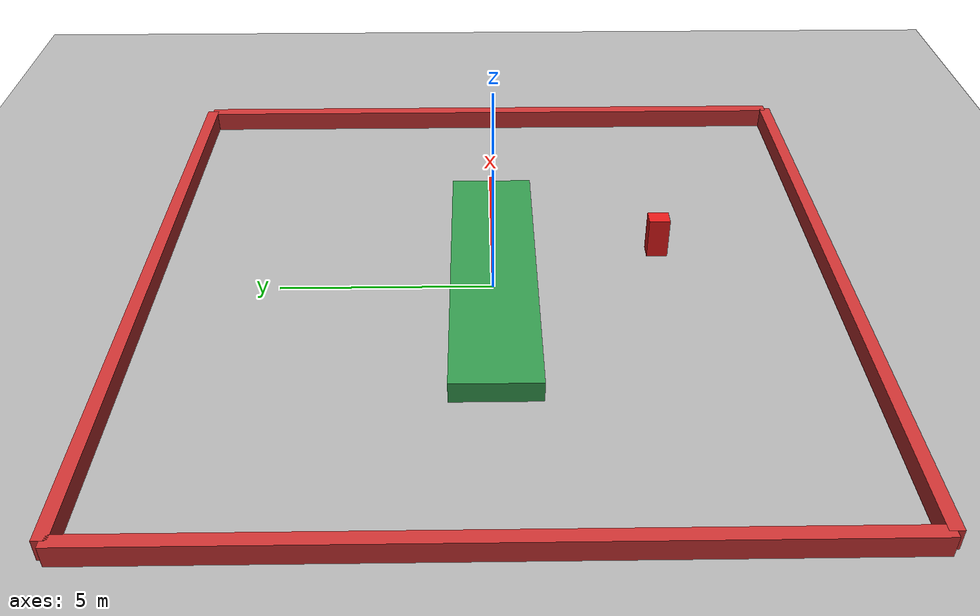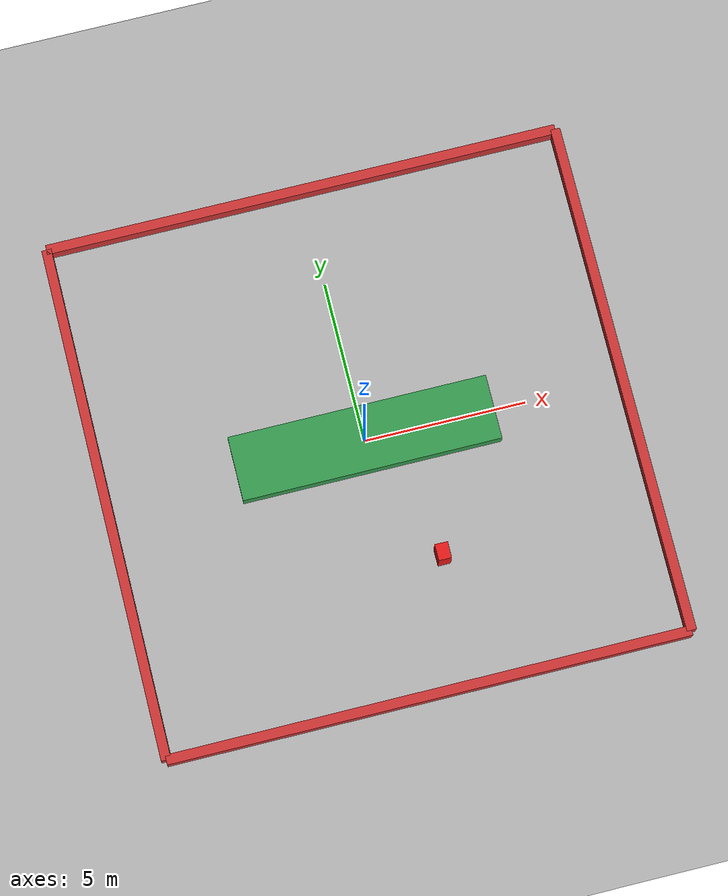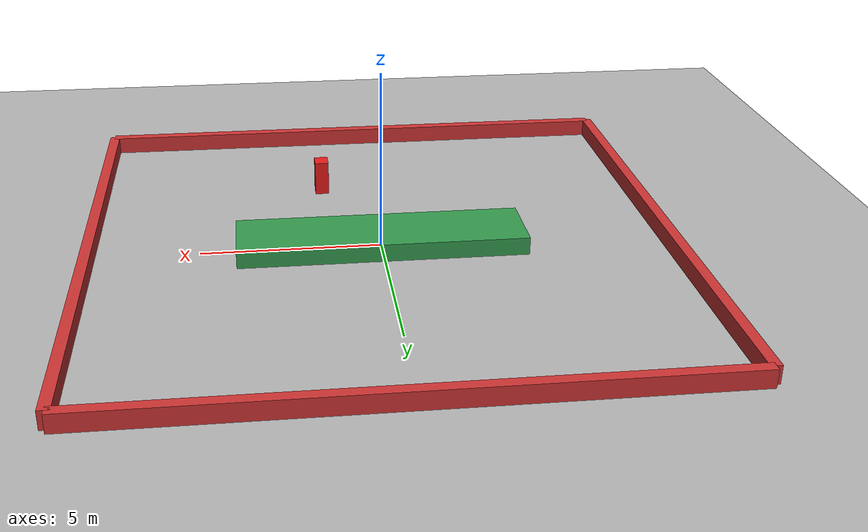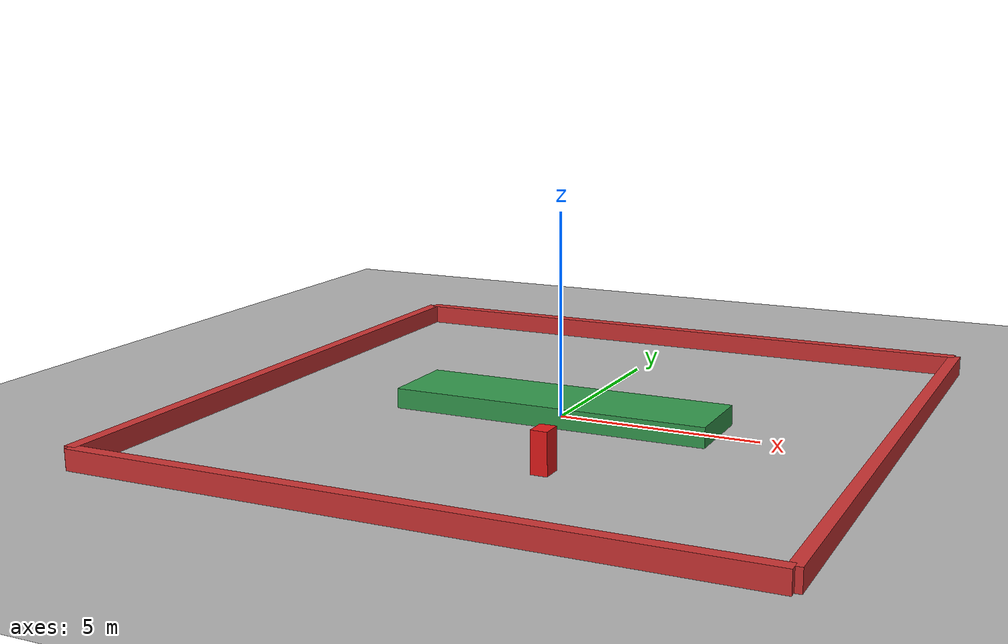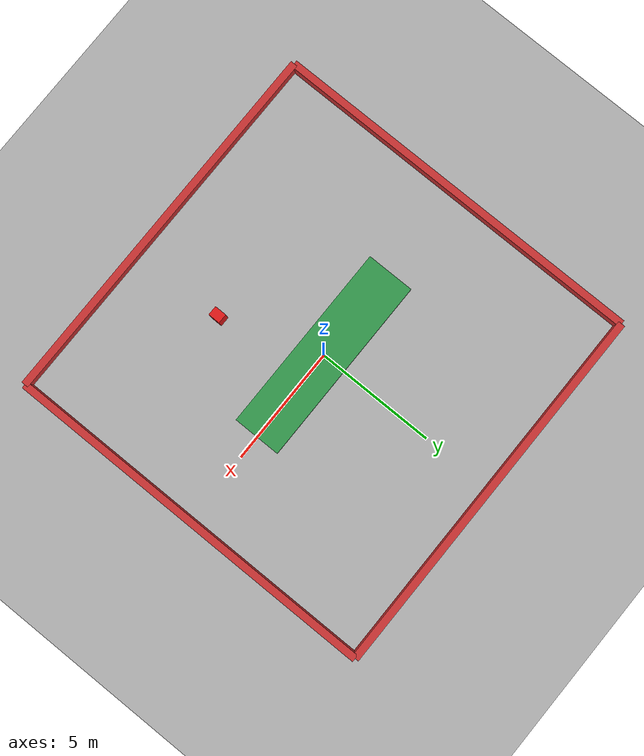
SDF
<?xml version="1.0" ?>
<sdf version="1.8">
  <world name="car_track_world">

    <!-- 1. 물리 엔진(Physics) 파라미터 설정         -->
    <!--
      - max_step_size: 고정 타임스텝 (0.001초 = 1ms)
      - real_time_factor: 목표 실시간 배율 (1.0 = 현실 시간과 동일)
    -->
    <physics name="1ms" type="ode">
      <max_step_size>0.001</max_step_size>
      <real_time_factor>1.0</real_time_factor>
    </physics>

    <!-- 2. Gazebo 필수 시스템 플러그인 로드        -->
    <!-- 물리 연산 시스템 -->
    <plugin
      filename="gz-sim-physics-system"
      name="gz::sim::systems::Physics">
    </plugin>

    <!-- 사용자 GUI 명령 및 모델 스폰 처리 시스템 -->
    <plugin
      filename="gz-sim-user-commands-system"
      name="gz::sim::systems::UserCommands">
    </plugin>

    <!-- 3D 렌더링 씬 정보를 GUI 및 센서로 브로드캐스팅하는 시스템 -->
    <plugin
      filename="gz-sim-scene-broadcaster-system"
      name="gz::sim::systems::SceneBroadcaster">
    </plugin>

    <plugin
      filename="gz-sim-sensors-system"
      name="gz::sim::systems::Sensors">
      <render_engine>ogre2</render_engine>
    </plugin>

    <plugin
      filename="gz-sim-imu-system"
      name="gz::sim::systems::Imu">
    </plugin>

    <!-- 3. 환경 조명 (Directional Sun)             -->
    <light type="directional" name="sun">
      <cast_shadows>true</cast_shadows>
      <pose>0 0 15 0 0 0</pose>
      <diffuse>0.85 0.85 0.85 1</diffuse>
      <specular>0.2 0.2 0.2 1</specular>
      <attenuation>
        <range>1000</range>
        <constant>0.9</constant>
        <linear>0.01</linear>
        <quadratic>0.001</quadratic>
      </attenuation>
      <direction>-0.5 0.1 -0.9</direction>
    </light>

    <!-- 4. 무한 지면 평면 (Ground Plane)           -->
    <model name="ground_plane">
      <static>true</static>
      <link name="link">
        <collision name="collision">
          <geometry>
            <plane>
              <normal>0 0 1</normal>
              <size>100 100</size>
            </plane>
          </geometry>
          <surface>
            <friction>
              <ode>
                <!-- 지면 마찰계수: 미끄러짐 방지를 위해 1.0으로 설정 -->
                <mu>1.0</mu>
                <mu2>1.0</mu2>
              </ode>
            </friction>
          </surface>
        </collision>
        <visual name="visual">
          <geometry>
            <plane>
              <normal>0 0 1</normal>
              <size>100 100</size>
            </plane>
          </geometry>
          <material>
            <ambient>0.7 0.7 0.7 1</ambient>
            <diffuse>0.7 0.7 0.7 1</diffuse>
            <specular>0.2 0.2 0.2 1</specular>
          </material>
        </visual>
      </link>
    </model>

    <!-- 5. 트랙 외곽 안전벽 및 주행 가이드 장애물  -->
    <!-- 북쪽 외곽벽 (길이 16m, 높이 0.5m) -->
    <model name="wall_north">
      <static>true</static>
      <pose>0 8 0.25 0 0 0</pose>
      <link name="link">
        <collision name="collision">
          <geometry>
            <box><size>16 0.3 0.5</size></box>
          </geometry>
        </collision>
        <visual name="visual">
          <geometry>
            <box><size>16 0.3 0.5</size></box>
          </geometry>
          <material>
            <ambient>0.8 0.2 0.2 1</ambient>
            <diffuse>0.8 0.2 0.2 1</diffuse>
          </material>
        </visual>
      </link>
    </model>

    <!-- 남쪽 외곽벽 (길이 16m, 높이 0.5m) -->
    <model name="wall_south">
      <static>true</static>
      <pose>0 -8 0.25 0 0 0</pose>
      <link name="link">
        <collision name="collision">
          <geometry>
            <box><size>16 0.3 0.5</size></box>
          </geometry>
        </collision>
        <visual name="visual">
          <geometry>
            <box><size>16 0.3 0.5</size></box>
          </geometry>
          <material>
            <ambient>0.8 0.2 0.2 1</ambient>
            <diffuse>0.8 0.2 0.2 1</diffuse>
          </material>
        </visual>
      </link>
    </model>

    <!-- 동쪽 외곽벽 (길이 16m, 높이 0.5m) -->
    <model name="wall_east">
      <static>true</static>
      <pose>8 0 0.25 0 0 0</pose>
      <link name="link">
        <collision name="collision">
          <geometry>
            <box><size>0.3 16 0.5</size></box>
          </geometry>
        </collision>
        <visual name="visual">
          <geometry>
            <box><size>0.3 16 0.5</size></box>
          </geometry>
          <material>
            <ambient>0.8 0.2 0.2 1</ambient>
            <diffuse>0.8 0.2 0.2 1</diffuse>
          </material>
        </visual>
      </link>
    </model>

    <!-- 서쪽 외곽벽 (길이 16m, 높이 0.5m) -->
    <model name="wall_west">
      <static>true</static>
      <pose>-8 0 0.25 0 0 0</pose>
      <link name="link">
        <collision name="collision">
          <geometry>
            <box><size>0.3 16 0.5</size></box>
          </geometry>
        </collision>
        <visual name="visual">
          <geometry>
            <box><size>0.3 16 0.5</size></box>
          </geometry>
          <material>
            <ambient>0.8 0.2 0.2 1</ambient>
            <diffuse>0.8 0.2 0.2 1</diffuse>
          </material>
        </visual>
      </link>
    </model>

    <!-- 중앙 코스 분리대 (아일랜드 장애물) -->
    <model name="center_divider">
      <static>true</static>
      <pose>0 0 0.25 0 0 0</pose>
      <link name="link">
        <collision name="collision">
          <geometry>
            <box><size>8 2.0 0.5</size></box>
          </geometry>
        </collision>
        <visual name="visual">
          <geometry>
            <box><size>8 2.0 0.5</size></box>
          </geometry>
          <material>
            <ambient>0.2 0.6 0.3 1</ambient>
            <diffuse>0.2 0.6 0.3 1</diffuse>
          </material>
        </visual>
      </link>
    </model>

    <model name="front_obstacle">
      <static>true</static>
      <pose>1.4 -4.0 0.5 0 0 0</pose>
      <link name="link">
        <collision name="collision">
          <geometry><box><size>0.4 0.5 1.0</size></box></geometry>
        </collision>
        <visual name="visual">
          <geometry><box><size>0.4 0.5 1.0</size></box></geometry>
          <material>
            <ambient>0.9 0.1 0.1 1</ambient>
            <diffuse>0.9 0.1 0.1 1</diffuse>
          </material>
        </visual>
      </link>
    </model>

  </world>
</sdf>
